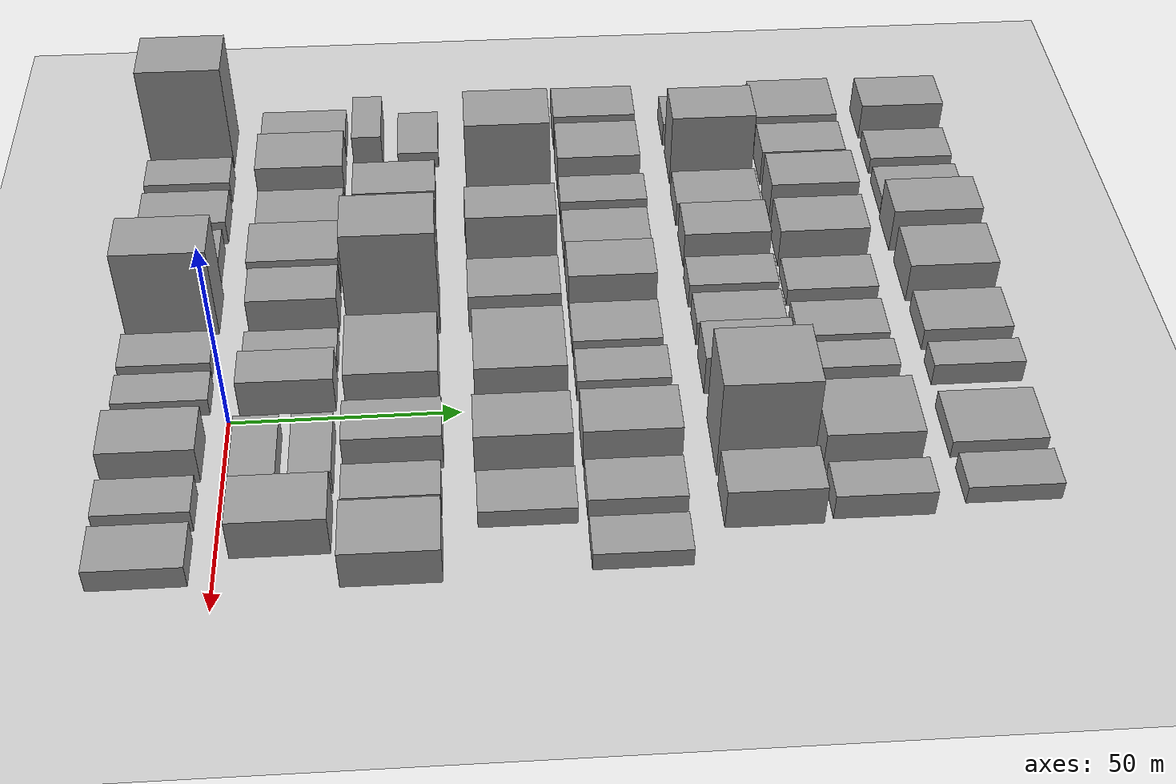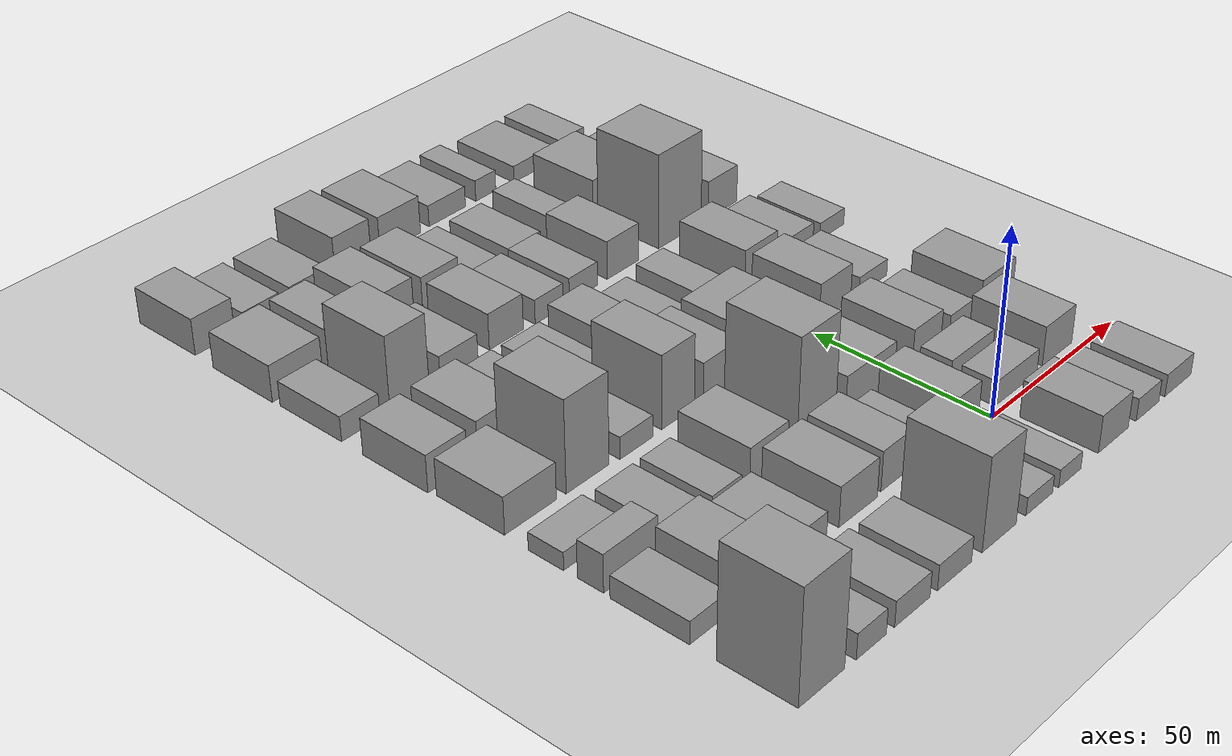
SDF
<sdf version="1.4">
 <world name="default">
  <model name="ground_plane">
   <static>1</static>
   <pose>100 65 0 0 -0 0</pose>
   <link name="link">
    <velocity_decay><linear>0</linear><angular>0</angular></velocity_decay>
    <collision name="collision">
     <geometry><plane><normal>0 0 1</normal><size>400 250</size></plane></geometry>
     <surface><friction><ode><mu>100</mu><mu2>50</mu2></ode></friction></surface>
    </collision>
    <visual name="visual">
     <geometry><plane><normal>0 0 1</normal><size>400 250</size></plane></geometry>
     <material>
      <script><name>Gazebo/Grey</name><uri>file://media/materials/scripts/gazebo.material</uri></script>
     </material>
    </visual>
   </link>
  </model>
  <model name="box_100">
   <static>1</static>
   <pose>-94.3 -14.9 15 0 -0 0</pose>
   <link name="link">
    <velocity_decay><linear>0</linear><angular>0</angular></velocity_decay>
    <collision name="collision"><geometry><box><size>14.4 20.2 30</size></box></geometry></collision>
    <visual name="visual">
     <geometry><box><size>14.4 20.2 30</size></box></geometry>
     <material>
      <script><name>Gazebo/Grey</name><uri>file://media/materials/scripts/gazebo.material</uri></script>
     </material>
    </visual>
   </link>
  </model>
  <model name="box_200">
   <static>1</static>
   <pose>-78.44 -14.7 3 0 -0 0</pose>
   <link name="link">
    <velocity_decay><linear>0</linear><angular>0</angular></velocity_decay>
    <collision name="collision"><geometry><box><size>9.8 20.6 7</size></box></geometry></collision>
    <visual name="visual">
     <geometry><box><size>9.8 20.6 7</size></box></geometry>
     <material>
      <script><name>Gazebo/Grey</name><uri>file://media/materials/scripts/gazebo.material</uri></script>
     </material>
    </visual>
   </link>
  </model>
  <model name="box_300">
   <static>1</static>
   <pose>-64.82 -14.65 3 0 -0 0</pose>
   <link name="link">
    <velocity_decay><linear>0</linear><angular>0</angular></velocity_decay>
    <collision name="collision"><geometry><box><size>12 20.7 7</size></box></geometry></collision>
    <visual name="visual">
     <geometry><box><size>12 20.7 7</size></box></geometry>
     <material>
      <script><name>Gazebo/Grey</name><uri>file://media/materials/scripts/gazebo.material</uri></script>
     </material>
    </visual>
   </link>
  </model>
  <model name="box_400">
   <static>1</static>
   <pose>-50.24 -14.95 3 0 -0 0</pose>
   <link name="link">
    <velocity_decay><linear>0</linear><angular>0</angular></velocity_decay>
    <collision name="collision"><geometry><box><size>12 20.1 7</size></box></geometry></collision>
    <visual name="visual">
     <geometry><box><size>12 20.1 7</size></box></geometry>
     <material>
      <script><name>Gazebo/Grey</name><uri>file://media/materials/scripts/gazebo.material</uri></script>
     </material>
    </visual>
   </link>
  </model>
  <model name="box_500">
   <static>1</static>
   <pose>-34.15 -14.55 12 0 -0 0</pose>
   <link name="link">
    <velocity_decay><linear>0</linear><angular>0</angular></velocity_decay>
    <collision name="collision"><geometry><box><size>12.5 20.9 25</size></box></geometry></collision>
    <visual name="visual">
     <geometry><box><size>12.5 20.9 25</size></box></geometry>
     <material>
      <script><name>Gazebo/Grey</name><uri>file://media/materials/scripts/gazebo.material</uri></script>
     </material>
    </visual>
   </link>
  </model>
  <model name="box_600">
   <static>1</static>
   <pose>-19.13 -14.8 2 0 -0 0</pose>
   <link name="link">
    <velocity_decay><linear>0</linear><angular>0</angular></velocity_decay>
    <collision name="collision"><geometry><box><size>10.2 20.4 5</size></box></geometry></collision>
    <visual name="visual">
     <geometry><box><size>10.2 20.4 5</size></box></geometry>
     <material>
      <script><name>Gazebo/Grey</name><uri>file://media/materials/scripts/gazebo.material</uri></script>
     </material>
    </visual>
   </link>
  </model>
  <model name="box_700">
   <static>1</static>
   <pose>-7.265 -14.6 2 0 -0 0</pose>
   <link name="link">
    <velocity_decay><linear>0</linear><angular>0</angular></velocity_decay>
    <collision name="collision"><geometry><box><size>8.73 20.8 5</size></box></geometry></collision>
    <visual name="visual">
     <geometry><box><size>8.73 20.8 5</size></box></geometry>
     <material>
      <script><name>Gazebo/Grey</name><uri>file://media/materials/scripts/gazebo.material</uri></script>
     </material>
    </visual>
   </link>
  </model>
  <model name="box_110">
   <static>1</static>
   <pose>-95.6 12.5 3 0 -0 0</pose>
   <link name="link">
    <velocity_decay><linear>0</linear><angular>0</angular></velocity_decay>
    <collision name="collision"><geometry><box><size>11.8 21 6</size></box></geometry></collision>
    <visual name="visual">
     <geometry><box><size>11.8 21 6</size></box></geometry>
     <material>
      <script><name>Gazebo/Grey</name><uri>file://media/materials/scripts/gazebo.material</uri></script>
     </material>
    </visual>
   </link>
  </model>
  <model name="box_210">
   <static>1</static>
   <pose>-80.82 12.5 5 0 -0 0</pose>
   <link name="link">
    <velocity_decay><linear>0</linear><angular>0</angular></velocity_decay>
    <collision name="collision"><geometry><box><size>13.7 21 10</size></box></geometry></collision>
    <visual name="visual">
     <geometry><box><size>13.7 21 10</size></box></geometry>
     <material>
      <script><name>Gazebo/Grey</name><uri>file://media/materials/scripts/gazebo.material</uri></script>
     </material>
    </visual>
   </link>
  </model>
  <model name="box_310">
   <static>1</static>
   <pose>-63.67 12.8 3 0 -0 0</pose>
   <link name="link">
    <velocity_decay><linear>0</linear><angular>0</angular></velocity_decay>
    <collision name="collision"><geometry><box><size>13.6 20.4 6</size></box></geometry></collision>
    <visual name="visual">
     <geometry><box><size>13.6 20.4 6</size></box></geometry>
     <material>
      <script><name>Gazebo/Grey</name><uri>file://media/materials/scripts/gazebo.material</uri></script>
     </material>
    </visual>
   </link>
  </model>
  <model name="box_410">
   <static>1</static>
   <pose>-46.56 12.6 5 0 -0 0</pose>
   <link name="link">
    <velocity_decay><linear>0</linear><angular>0</angular></velocity_decay>
    <collision name="collision"><geometry><box><size>13.4 20.8 11</size></box></geometry></collision>
    <visual name="visual">
     <geometry><box><size>13.4 20.8 11</size></box></geometry>
     <material>
      <script><name>Gazebo/Grey</name><uri>file://media/materials/scripts/gazebo.material</uri></script>
     </material>
    </visual>
   </link>
  </model>
  <model name="box_510">
   <static>1</static>
   <pose>-32.19 12.9 5 0 -0 0</pose>
   <link name="link">
    <velocity_decay><linear>0</linear><angular>0</angular></velocity_decay>
    <collision name="collision"><geometry><box><size>11.1 20.2 11</size></box></geometry></collision>
    <visual name="visual">
     <geometry><box><size>11.1 20.2 11</size></box></geometry>
     <material>
      <script><name>Gazebo/Grey</name><uri>file://media/materials/scripts/gazebo.material</uri></script>
     </material>
    </visual>
   </link>
  </model>
  <model name="box_610">
   <static>1</static>
   <pose>-18.9 12.6 2 0 -0 0</pose>
   <link name="link">
    <velocity_decay><linear>0</linear><angular>0</angular></velocity_decay>
    <collision name="collision"><geometry><box><size>9.1 20.8 5</size></box></geometry></collision>
    <visual name="visual">
     <geometry><box><size>9.1 20.8 5</size></box></geometry>
     <material>
      <script><name>Gazebo/Grey</name><uri>file://media/materials/scripts/gazebo.material</uri></script>
     </material>
    </visual>
   </link>
  </model>
  <model name="box_710">
   <static>1</static>
   <pose>-6.88 12.6 5 0 -0 0</pose>
   <link name="link">
    <velocity_decay><linear>0</linear><angular>0</angular></velocity_decay>
    <collision name="collision"><geometry><box><size>9.56 20.8 10</size></box></geometry></collision>
    <visual name="visual">
     <geometry><box><size>9.56 20.8 10</size></box></geometry>
     <material>
      <script><name>Gazebo/Grey</name><uri>file://media/materials/scripts/gazebo.material</uri></script>
     </material>
    </visual>
   </link>
  </model>
  <model name="box_120">
   <static>1</static>
   <pose>-92.95 28.6 5 0 -0 0</pose>
   <link name="link">
    <velocity_decay><linear>0</linear><angular>0</angular></velocity_decay>
    <collision name="collision"><geometry><box><size>16.5 7.2 10</size></box></geometry></collision>
    <visual name="visual">
     <geometry><box><size>16.5 7.2 10</size></box></geometry>
     <material>
      <script><name>Gazebo/Grey</name><uri>file://media/materials/scripts/gazebo.material</uri></script>
     </material>
    </visual>
   </link>
  </model>
  <model name="box_1202">
   <static>1</static>
   <pose>-92.95 41 2 0 -0 0</pose>
   <link name="link">
    <velocity_decay><linear>0</linear><angular>0</angular></velocity_decay>
    <collision name="collision"><geometry><box><size>16.5 10 5</size></box></geometry></collision>
    <visual name="visual">
     <geometry><box><size>16.5 10 5</size></box></geometry>
     <material>
      <script><name>Gazebo/Grey</name><uri>file://media/materials/scripts/gazebo.material</uri></script>
     </material>
    </visual>
   </link>
  </model>
  <model name="box_220">
   <static>1</static>
   <pose>-75.71 35.05 2 0 -0 0</pose>
   <link name="link">
    <velocity_decay><linear>0</linear><angular>0</angular></velocity_decay>
    <collision name="collision"><geometry><box><size>12 20.1 5</size></box></geometry></collision>
    <visual name="visual">
     <geometry><box><size>12 20.1 5</size></box></geometry>
     <material>
      <script><name>Gazebo/Grey</name><uri>file://media/materials/scripts/gazebo.material</uri></script>
     </material>
    </visual>
   </link>
  </model>
  <model name="box_320">
   <static>1</static>
   <pose>-62.4 35.05 2 0 -0 0</pose>
   <link name="link">
    <velocity_decay><linear>0</linear><angular>0</angular></velocity_decay>
    <collision name="collision"><geometry><box><size>9.8 20.1 5</size></box></geometry></collision>
    <visual name="visual">
     <geometry><box><size>9.8 20.1 5</size></box></geometry>
     <material>
      <script><name>Gazebo/Grey</name><uri>file://media/materials/scripts/gazebo.material</uri></script>
     </material>
    </visual>
   </link>
  </model>
  <model name="box_420">
   <static>1</static>
   <pose>-48.21 35.15 5 0 -0 0</pose>
   <link name="link">
    <velocity_decay><linear>0</linear><angular>0</angular></velocity_decay>
    <collision name="collision"><geometry><box><size>13.1 20.3 10</size></box></geometry></collision>
    <visual name="visual">
     <geometry><box><size>13.1 20.3 10</size></box></geometry>
     <material>
      <script><name>Gazebo/Grey</name><uri>file://media/materials/scripts/gazebo.material</uri></script>
     </material>
    </visual>
   </link>
  </model>
  <model name="box_520">
   <static>1</static>
   <pose>-31.63 35.35 15 0 -0 0</pose>
   <link name="link">
    <velocity_decay><linear>0</linear><angular>0</angular></velocity_decay>
    <collision name="collision"><geometry><box><size>13.7 20.7 30</size></box></geometry></collision>
    <visual name="visual">
     <geometry><box><size>13.7 20.7 30</size></box></geometry>
     <material>
      <script><name>Gazebo/Grey</name><uri>file://media/materials/scripts/gazebo.material</uri></script>
     </material>
    </visual>
   </link>
  </model>
  <model name="box_620">
   <static>1</static>
   <pose>-11.78 35.15 5 0 -0 0</pose>
   <link name="link">
    <velocity_decay><linear>0</linear><angular>0</angular></velocity_decay>
    <collision name="collision"><geometry><box><size>18.36 20.3 11</size></box></geometry></collision>
    <visual name="visual">
     <geometry><box><size>18.36 20.3 11</size></box></geometry>
     <material>
      <script><name>Gazebo/Grey</name><uri>file://media/materials/scripts/gazebo.material</uri></script>
     </material>
    </visual>
   </link>
  </model>
  <model name="box_130">
   <static>1</static>
   <pose>-93.35 62.9 5 0 -0 0</pose>
   <link name="link">
    <velocity_decay><linear>0</linear><angular>0</angular></velocity_decay>
    <collision name="collision"><geometry><box><size>15.7 20.2 10</size></box></geometry></collision>
    <visual name="visual">
     <geometry><box><size>15.7 20.2 10</size></box></geometry>
     <material>
      <script><name>Gazebo/Grey</name><uri>file://media/materials/scripts/gazebo.material</uri></script>
     </material>
    </visual>
   </link>
  </model>
  <model name="box_230">
   <static>1</static>
   <pose>-75.67 62.9 12 0 -0 0</pose>
   <link name="link">
    <velocity_decay><linear>0</linear><angular>0</angular></velocity_decay>
    <collision name="collision"><geometry><box><size>13.6 20.2 25</size></box></geometry></collision>
    <visual name="visual">
     <geometry><box><size>13.6 20.2 25</size></box></geometry>
     <material>
      <script><name>Gazebo/Grey</name><uri>file://media/materials/scripts/gazebo.material</uri></script>
     </material>
    </visual>
   </link>
  </model>
  <model name="box_330">
   <static>1</static>
   <pose>-60.77 62.5 3 0 -0 0</pose>
   <link name="link">
    <velocity_decay><linear>0</linear><angular>0</angular></velocity_decay>
    <collision name="collision"><geometry><box><size>10.8 21 6</size></box></geometry></collision>
    <visual name="visual">
     <geometry><box><size>10.8 21 6</size></box></geometry>
     <material>
      <script><name>Gazebo/Grey</name><uri>file://media/materials/scripts/gazebo.material</uri></script>
     </material>
    </visual>
   </link>
  </model>
  <model name="box_430">
   <static>1</static>
   <pose>-46.5 62.65 10 0 -0 0</pose>
   <link name="link">
    <velocity_decay><linear>0</linear><angular>0</angular></velocity_decay>
    <collision name="collision"><geometry><box><size>11.2 20.7 20</size></box></geometry></collision>
    <visual name="visual">
     <geometry><box><size>11.2 20.7 20</size></box></geometry>
     <material>
      <script><name>Gazebo/Grey</name><uri>file://media/materials/scripts/gazebo.material</uri></script>
     </material>
    </visual>
   </link>
  </model>
  <model name="box_530">
   <static>1</static>
   <pose>-31.51 62.6 5 0 -0 0</pose>
   <link name="link">
    <velocity_decay><linear>0</linear><angular>0</angular></velocity_decay>
    <collision name="collision"><geometry><box><size>12.8 20.8 11</size></box></geometry></collision>
    <visual name="visual">
     <geometry><box><size>12.8 20.8 11</size></box></geometry>
     <material>
      <script><name>Gazebo/Grey</name><uri>file://media/materials/scripts/gazebo.material</uri></script>
     </material>
    </visual>
   </link>
  </model>
  <model name="box_630">
   <static>1</static>
   <pose>-11.965 62.95 5 0 -0 0</pose>
   <link name="link">
    <velocity_decay><linear>0</linear><angular>0</angular></velocity_decay>
    <collision name="collision"><geometry><box><size>18.73 20.1 11</size></box></geometry></collision>
    <visual name="visual">
     <geometry><box><size>18.73 20.1 11</size></box></geometry>
     <material>
      <script><name>Gazebo/Grey</name><uri>file://media/materials/scripts/gazebo.material</uri></script>
     </material>
    </visual>
   </link>
  </model>
  <model name="box_140">
   <static>1</static>
   <pose>-95.85 85.15 5 0 -0 0</pose>
   <link name="link">
    <velocity_decay><linear>0</linear><angular>0</angular></velocity_decay>
    <collision name="collision"><geometry><box><size>11.9 20.3 10</size></box></geometry></collision>
    <visual name="visual">
     <geometry><box><size>11.9 20.3 10</size></box></geometry>
     <material>
      <script><name>Gazebo/Grey</name><uri>file://media/materials/scripts/gazebo.material</uri></script>
     </material>
    </visual>
   </link>
  </model>
  <model name="box_240">
   <static>1</static>
   <pose>-79.9 85.05 5 0 -0 0</pose>
   <link name="link">
    <velocity_decay><linear>0</linear><angular>0</angular></velocity_decay>
    <collision name="collision"><geometry><box><size>13.8 20.1 11</size></box></geometry></collision>
    <visual name="visual">
     <geometry><box><size>13.8 20.1 11</size></box></geometry>
     <material>
      <script><name>Gazebo/Grey</name><uri>file://media/materials/scripts/gazebo.material</uri></script>
     </material>
    </visual>
   </link>
  </model>
  <model name="box_340">
   <static>1</static>
   <pose>-66.06 85.4 3 0 -0 0</pose>
   <link name="link">
    <velocity_decay><linear>0</linear><angular>0</angular></velocity_decay>
    <collision name="collision"><geometry><box><size>9.7 20.8 7</size></box></geometry></collision>
    <visual name="visual">
     <geometry><box><size>9.7 20.8 7</size></box></geometry>
     <material>
      <script><name>Gazebo/Grey</name><uri>file://media/materials/scripts/gazebo.material</uri></script>
     </material>
    </visual>
   </link>
  </model>
  <model name="box_440">
   <static>1</static>
   <pose>-52.05 85.2 3 0 -0 0</pose>
   <link name="link">
    <velocity_decay><linear>0</linear><angular>0</angular></velocity_decay>
    <collision name="collision"><geometry><box><size>12.6 20.4 7</size></box></geometry></collision>
    <visual name="visual">
     <geometry><box><size>12.6 20.4 7</size></box></geometry>
     <material>
      <script><name>Gazebo/Grey</name><uri>file://media/materials/scripts/gazebo.material</uri></script>
     </material>
    </visual>
   </link>
  </model>
  <model name="box_540">
   <static>1</static>
   <pose>-37.03 85.1 5 0 -0 0</pose>
   <link name="link">
    <velocity_decay><linear>0</linear><angular>0</angular></velocity_decay>
    <collision name="collision"><geometry><box><size>11.9 20.2 10</size></box></geometry></collision>
    <visual name="visual">
     <geometry><box><size>11.9 20.2 10</size></box></geometry>
     <material>
      <script><name>Gazebo/Grey</name><uri>file://media/materials/scripts/gazebo.material</uri></script>
     </material>
    </visual>
   </link>
  </model>
  <model name="box_640">
   <static>1</static>
   <pose>-22.04 85.05 2 0 -0 0</pose>
   <link name="link">
    <velocity_decay><linear>0</linear><angular>0</angular></velocity_decay>
    <collision name="collision"><geometry><box><size>12.5 20.1 5</size></box></geometry></collision>
    <visual name="visual">
     <geometry><box><size>12.5 20.1 5</size></box></geometry>
     <material>
      <script><name>Gazebo/Grey</name><uri>file://media/materials/scripts/gazebo.material</uri></script>
     </material>
    </visual>
   </link>
  </model>
  <model name="box_740">
   <static>1</static>
   <pose>-6.99001 85.25 3 0 -0 0</pose>
   <link name="link">
    <velocity_decay><linear>0</linear><angular>0</angular></velocity_decay>
    <collision name="collision"><geometry><box><size>9.98001 20.5 6</size></box></geometry></collision>
    <visual name="visual">
     <geometry><box><size>9.98001 20.5 6</size></box></geometry>
     <material>
      <script><name>Gazebo/Grey</name><uri>file://media/materials/scripts/gazebo.material</uri></script>
     </material>
    </visual>
   </link>
  </model>
  <model name="box_150">
   <static>1</static>
   <pose>-95.65 112.8 3 0 -0 0</pose>
   <link name="link">
    <velocity_decay><linear>0</linear><angular>0</angular></velocity_decay>
    <collision name="collision"><geometry><box><size>11.5 20.4 7</size></box></geometry></collision>
    <visual name="visual">
     <geometry><box><size>11.5 20.4 7</size></box></geometry>
     <material>
      <script><name>Gazebo/Grey</name><uri>file://media/materials/scripts/gazebo.material</uri></script>
     </material>
    </visual>
   </link>
  </model>
  <model name="box_250">
   <static>1</static>
   <pose>-80.57 112.9 10 0 -0 0</pose>
   <link name="link">
    <velocity_decay><linear>0</linear><angular>0</angular></velocity_decay>
    <collision name="collision"><geometry><box><size>12.2 20.2 20</size></box></geometry></collision>
    <visual name="visual">
     <geometry><box><size>12.2 20.2 20</size></box></geometry>
     <material>
      <script><name>Gazebo/Grey</name><uri>file://media/materials/scripts/gazebo.material</uri></script>
     </material>
    </visual>
   </link>
  </model>
  <model name="box_350">
   <static>1</static>
   <pose>-65.01 112.85 3 0 -0 0</pose>
   <link name="link">
    <velocity_decay><linear>0</linear><angular>0</angular></velocity_decay>
    <collision name="collision"><geometry><box><size>12.2 20.3 7</size></box></geometry></collision>
    <visual name="visual">
     <geometry><box><size>12.2 20.3 7</size></box></geometry>
     <material>
      <script><name>Gazebo/Grey</name><uri>file://media/materials/scripts/gazebo.material</uri></script>
     </material>
    </visual>
   </link>
  </model>
  <model name="box_450">
   <static>1</static>
   <pose>-49.37 112.9 5 0 -0 0</pose>
   <link name="link">
    <velocity_decay><linear>0</linear><angular>0</angular></velocity_decay>
    <collision name="collision"><geometry><box><size>11.4 20.2 10</size></box></geometry></collision>
    <visual name="visual">
     <geometry><box><size>11.4 20.2 10</size></box></geometry>
     <material>
      <script><name>Gazebo/Grey</name><uri>file://media/materials/scripts/gazebo.material</uri></script>
     </material>
    </visual>
   </link>
  </model>
  <model name="box_550">
   <static>1</static>
   <pose>-35.08 112.75 3 0 -0 0</pose>
   <link name="link">
    <velocity_decay><linear>0</linear><angular>0</angular></velocity_decay>
    <collision name="collision"><geometry><box><size>9.8 20.5 7</size></box></geometry></collision>
    <visual name="visual">
     <geometry><box><size>9.8 20.5 7</size></box></geometry>
     <material>
      <script><name>Gazebo/Grey</name><uri>file://media/materials/scripts/gazebo.material</uri></script>
     </material>
    </visual>
   </link>
  </model>
  <model name="box_650">
   <static>1</static>
   <pose>-22.82 112.9 3 0 -0 0</pose>
   <link name="link">
    <velocity_decay><linear>0</linear><angular>0</angular></velocity_decay>
    <collision name="collision"><geometry><box><size>10 20.2 7</size></box></geometry></collision>
    <visual name="visual">
     <geometry><box><size>10 20.2 7</size></box></geometry>
     <material>
      <script><name>Gazebo/Grey</name><uri>file://media/materials/scripts/gazebo.material</uri></script>
     </material>
    </visual>
   </link>
  </model>
  <model name="box_750">
   <static>1</static>
   <pose>-8.495 112.9 5 0 -0 0</pose>
   <link name="link">
    <velocity_decay><linear>0</linear><angular>0</angular></velocity_decay>
    <collision name="collision"><geometry><box><size>11.59 20.2 11</size></box></geometry></collision>
    <visual name="visual">
     <geometry><box><size>11.59 20.2 11</size></box></geometry>
     <material>
      <script><name>Gazebo/Grey</name><uri>file://media/materials/scripts/gazebo.material</uri></script>
     </material>
    </visual>
   </link>
  </model>
  <model name="box_160">
   <static>1</static>
   <pose>-94.35 135.3 5 0 -0 0</pose>
   <link name="link">
    <velocity_decay><linear>0</linear><angular>0</angular></velocity_decay>
    <collision name="collision"><geometry><box><size>15.1 20.6 10</size></box></geometry></collision>
    <visual name="visual">
     <geometry><box><size>15.1 20.6 10</size></box></geometry>
     <material>
      <script><name>Gazebo/Grey</name><uri>file://media/materials/scripts/gazebo.material</uri></script>
     </material>
    </visual>
   </link>
  </model>
  <model name="box_260">
   <static>1</static>
   <pose>-78.43 135.2 5 0 -0 0</pose>
   <link name="link">
    <velocity_decay><linear>0</linear><angular>0</angular></velocity_decay>
    <collision name="collision"><geometry><box><size>11.3 20.4 10</size></box></geometry></collision>
    <visual name="visual">
     <geometry><box><size>11.3 20.4 10</size></box></geometry>
     <material>
      <script><name>Gazebo/Grey</name><uri>file://media/materials/scripts/gazebo.material</uri></script>
     </material>
    </visual>
   </link>
  </model>
  <model name="box_360">
   <static>1</static>
   <pose>-63.87 135.45 6 0 -0 0</pose>
   <link name="link">
    <velocity_decay><linear>0</linear><angular>0</angular></velocity_decay>
    <collision name="collision"><geometry><box><size>12 20.9 12</size></box></geometry></collision>
    <visual name="visual">
     <geometry><box><size>12 20.9 12</size></box></geometry>
     <material>
      <script><name>Gazebo/Grey</name><uri>file://media/materials/scripts/gazebo.material</uri></script>
     </material>
    </visual>
   </link>
  </model>
  <model name="box_460">
   <static>1</static>
   <pose>-48.93 135.45 5 0 -0 0</pose>
   <link name="link">
    <velocity_decay><linear>0</linear><angular>0</angular></velocity_decay>
    <collision name="collision"><geometry><box><size>12.1 20.9 11</size></box></geometry></collision>
    <visual name="visual">
     <geometry><box><size>12.1 20.9 11</size></box></geometry>
     <material>
      <script><name>Gazebo/Grey</name><uri>file://media/materials/scripts/gazebo.material</uri></script>
     </material>
    </visual>
   </link>
  </model>
  <model name="box_560">
   <static>1</static>
   <pose>-34.96 135.5 2 0 -0 0</pose>
   <link name="link">
    <velocity_decay><linear>0</linear><angular>0</angular></velocity_decay>
    <collision name="collision"><geometry><box><size>11 21 5</size></box></geometry></collision>
    <visual name="visual">
     <geometry><box><size>11 21 5</size></box></geometry>
     <material>
      <script><name>Gazebo/Grey</name><uri>file://media/materials/scripts/gazebo.material</uri></script>
     </material>
    </visual>
   </link>
  </model>
  <model name="box_660">
   <static>1</static>
   <pose>-19.97 135.35 2 0 -0 0</pose>
   <link name="link">
    <velocity_decay><linear>0</linear><angular>0</angular></velocity_decay>
    <collision name="collision"><geometry><box><size>11.2 20.7 5</size></box></geometry></collision>
    <visual name="visual">
     <geometry><box><size>11.2 20.7 5</size></box></geometry>
     <material>
      <script><name>Gazebo/Grey</name><uri>file://media/materials/scripts/gazebo.material</uri></script>
     </material>
    </visual>
   </link>
  </model>
  <model name="box_760">
   <static>1</static>
   <pose>-6.4 135.2 3 0 -0 0</pose>
   <link name="link">
    <velocity_decay><linear>0</linear><angular>0</angular></velocity_decay>
    <collision name="collision"><geometry><box><size>8.19999 20.4 7</size></box></geometry></collision>
    <visual name="visual">
     <geometry><box><size>8.19999 20.4 7</size></box></geometry>
     <material>
      <script><name>Gazebo/Grey</name><uri>file://media/materials/scripts/gazebo.material</uri></script>
     </material>
    </visual>
   </link>
  </model>
  <model name="box_170">
   <static>1</static>
   <pose>-95.5 162.8 5 0 -0 0</pose>
   <link name="link">
    <velocity_decay><linear>0</linear><angular>0</angular></velocity_decay>
    <collision name="collision"><geometry><box><size>11.8 20.4 10</size></box></geometry></collision>
    <visual name="visual">
     <geometry><box><size>11.8 20.4 10</size></box></geometry>
     <material>
      <script><name>Gazebo/Grey</name><uri>file://media/materials/scripts/gazebo.material</uri></script>
     </material>
    </visual>
   </link>
  </model>
  <model name="box_270">
   <static>1</static>
   <pose>-81.22 162.85 2 0 -0 0</pose>
   <link name="link">
    <velocity_decay><linear>0</linear><angular>0</angular></velocity_decay>
    <collision name="collision"><geometry><box><size>11.3 20.3 5</size></box></geometry></collision>
    <visual name="visual">
     <geometry><box><size>11.3 20.3 5</size></box></geometry>
     <material>
      <script><name>Gazebo/Grey</name><uri>file://media/materials/scripts/gazebo.material</uri></script>
     </material>
    </visual>
   </link>
  </model>
  <model name="box_370">
   <static>1</static>
   <pose>-66.34 162.8 2 0 -0 0</pose>
   <link name="link">
    <velocity_decay><linear>0</linear><angular>0</angular></velocity_decay>
    <collision name="collision"><geometry><box><size>12.1 20.4 5</size></box></geometry></collision>
    <visual name="visual">
     <geometry><box><size>12.1 20.4 5</size></box></geometry>
     <material>
      <script><name>Gazebo/Grey</name><uri>file://media/materials/scripts/gazebo.material</uri></script>
     </material>
    </visual>
   </link>
  </model>
  <model name="box_470">
   <static>1</static>
   <pose>-52.39 162.55 6 0 -0 0</pose>
   <link name="link">
    <velocity_decay><linear>0</linear><angular>0</angular></velocity_decay>
    <collision name="collision"><geometry><box><size>11.8 20.9 12</size></box></geometry></collision>
    <visual name="visual">
     <geometry><box><size>11.8 20.9 12</size></box></geometry>
     <material>
      <script><name>Gazebo/Grey</name><uri>file://media/materials/scripts/gazebo.material</uri></script>
     </material>
    </visual>
   </link>
  </model>
  <model name="box_570">
   <static>1</static>
   <pose>-36.19 162.8 5 0 -0 0</pose>
   <link name="link">
    <velocity_decay><linear>0</linear><angular>0</angular></velocity_decay>
    <collision name="collision"><geometry><box><size>13.8 20.4 11</size></box></geometry></collision>
    <visual name="visual">
     <geometry><box><size>13.8 20.4 11</size></box></geometry>
     <material>
      <script><name>Gazebo/Grey</name><uri>file://media/materials/scripts/gazebo.material</uri></script>
     </material>
    </visual>
   </link>
  </model>
  <model name="box_670">
   <static>1</static>
   <pose>-19.51 162.95 3 0 -0 0</pose>
   <link name="link">
    <velocity_decay><linear>0</linear><angular>0</angular></velocity_decay>
    <collision name="collision"><geometry><box><size>12.9 20.1 6</size></box></geometry></collision>
    <visual name="visual">
     <geometry><box><size>12.9 20.1 6</size></box></geometry>
     <material>
      <script><name>Gazebo/Grey</name><uri>file://media/materials/scripts/gazebo.material</uri></script>
     </material>
    </visual>
   </link>
  </model>
  <model name="box_770">
   <static>1</static>
   <pose>-5.75499 162.9 3 0 -0 0</pose>
   <link name="link">
    <velocity_decay><linear>0</linear><angular>0</angular></velocity_decay>
    <collision name="collision"><geometry><box><size>7.30998 20.2 6</size></box></geometry></collision>
    <visual name="visual">
     <geometry><box><size>7.30998 20.2 6</size></box></geometry>
     <material>
      <script><name>Gazebo/Grey</name><uri>file://media/materials/scripts/gazebo.material</uri></script>
     </material>
    </visual>
   </link>
  </model>
  <model name="box_101">
   <static>1</static>
   <pose>10.25 -14.8 5 0 -0 0</pose>
   <link name="link">
    <velocity_decay><linear>0</linear><angular>0</angular></velocity_decay>
    <collision name="collision"><geometry><box><size>12.3 20.4 10</size></box></geometry></collision>
    <visual name="visual">
     <geometry><box><size>12.3 20.4 10</size></box></geometry>
     <material>
      <script><name>Gazebo/Grey</name><uri>file://media/materials/scripts/gazebo.material</uri></script>
     </material>
    </visual>
   </link>
  </model>
  <model name="box_201">
   <static>1</static>
   <pose>24.62 -14.95 3 0 -0 0</pose>
   <link name="link">
    <velocity_decay><linear>0</linear><angular>0</angular></velocity_decay>
    <collision name="collision"><geometry><box><size>9.7 20.1 6</size></box></geometry></collision>
    <visual name="visual">
     <geometry><box><size>9.7 20.1 6</size></box></geometry>
     <material>
      <script><name>Gazebo/Grey</name><uri>file://media/materials/scripts/gazebo.material</uri></script>
     </material>
    </visual>
   </link>
  </model>
  <model name="box_301">
   <static>1</static>
   <pose>37.82 -14.95 3 0 -0 0</pose>
   <link name="link">
    <velocity_decay><linear>0</linear><angular>0</angular></velocity_decay>
    <collision name="collision"><geometry><box><size>11.5 20.1 6</size></box></geometry></collision>
    <visual name="visual">
     <geometry><box><size>11.5 20.1 6</size></box></geometry>
     <material>
      <script><name>Gazebo/Grey</name><uri>file://media/materials/scripts/gazebo.material</uri></script>
     </material>
    </visual>
   </link>
  </model>
  <model name="box_111">
   <static>1</static>
   <pose>12.65 6.8 3 0 -0 0</pose>
   <link name="link">
    <velocity_decay><linear>0</linear><angular>0</angular></velocity_decay>
    <collision name="collision"><geometry><box><size>16.9 9.6 7</size></box></geometry></collision>
    <visual name="visual">
     <geometry><box><size>16.9 9.6 7</size></box></geometry>
     <material>
      <script><name>Gazebo/Grey</name><uri>file://media/materials/scripts/gazebo.material</uri></script>
     </material>
    </visual>
   </link>
  </model>
  <model name="box_1112">
   <static>1</static>
   <pose>12.65 18.6 3 0 -0 0</pose>
   <link name="link">
    <velocity_decay><linear>0</linear><angular>0</angular></velocity_decay>
    <collision name="collision"><geometry><box><size>16.9 8.8 7</size></box></geometry></collision>
    <visual name="visual">
     <geometry><box><size>16.9 8.8 7</size></box></geometry>
     <material>
      <script><name>Gazebo/Grey</name><uri>file://media/materials/scripts/gazebo.material</uri></script>
     </material>
    </visual>
   </link>
  </model>
  <model name="box_211">
   <static>1</static>
   <pose>30.63 12.85 5 0 -0 0</pose>
   <link name="link">
    <velocity_decay><linear>0</linear><angular>0</angular></velocity_decay>
    <collision name="collision"><geometry><box><size>12.4 20.3 11</size></box></geometry></collision>
    <visual name="visual">
     <geometry><box><size>12.4 20.3 11</size></box></geometry>
     <material>
      <script><name>Gazebo/Grey</name><uri>file://media/materials/scripts/gazebo.material</uri></script>
     </material>
    </visual>
   </link>
  </model>
  <model name="box_121">
   <static>1</static>
   <pose>10 35.45 5 0 -0 0</pose>
   <link name="link">
    <velocity_decay><linear>0</linear><angular>0</angular></velocity_decay>
    <collision name="collision"><geometry><box><size>11.2 20.9 10</size></box></geometry></collision>
    <visual name="visual">
     <geometry><box><size>11.2 20.9 10</size></box></geometry>
     <material>
      <script><name>Gazebo/Grey</name><uri>file://media/materials/scripts/gazebo.material</uri></script>
     </material>
    </visual>
   </link>
  </model>
  <model name="box_221">
   <static>1</static>
   <pose>23.73 35.2 3 0 -0 0</pose>
   <link name="link">
    <velocity_decay><linear>0</linear><angular>0</angular></velocity_decay>
    <collision name="collision"><geometry><box><size>9.3 20.4 7</size></box></geometry></collision>
    <visual name="visual">
     <geometry><box><size>9.3 20.4 7</size></box></geometry>
     <material>
      <script><name>Gazebo/Grey</name><uri>file://media/materials/scripts/gazebo.material</uri></script>
     </material>
    </visual>
   </link>
  </model>
  <model name="box_321">
   <static>1</static>
   <pose>38.66 35.2 5 0 -0 0</pose>
   <link name="link">
    <velocity_decay><linear>0</linear><angular>0</angular></velocity_decay>
    <collision name="collision"><geometry><box><size>13.8 20.4 10</size></box></geometry></collision>
    <visual name="visual">
     <geometry><box><size>13.8 20.4 10</size></box></geometry>
     <material>
      <script><name>Gazebo/Grey</name><uri>file://media/materials/scripts/gazebo.material</uri></script>
     </material>
    </visual>
   </link>
  </model>
  <model name="box_131">
   <static>1</static>
   <pose>10.9 62.65 5 0 -0 0</pose>
   <link name="link">
    <velocity_decay><linear>0</linear><angular>0</angular></velocity_decay>
    <collision name="collision"><geometry><box><size>12.2 20.7 11</size></box></geometry></collision>
    <visual name="visual">
     <geometry><box><size>12.2 20.7 11</size></box></geometry>
     <material>
      <script><name>Gazebo/Grey</name><uri>file://media/materials/scripts/gazebo.material</uri></script>
     </material>
    </visual>
   </link>
  </model>
  <model name="box_231">
   <static>1</static>
   <pose>26.34 62.8 2 0 -0 0</pose>
   <link name="link">
    <velocity_decay><linear>0</linear><angular>0</angular></velocity_decay>
    <collision name="collision"><geometry><box><size>11.2 20.4 5</size></box></geometry></collision>
    <visual name="visual">
     <geometry><box><size>11.2 20.4 5</size></box></geometry>
     <material>
      <script><name>Gazebo/Grey</name><uri>file://media/materials/scripts/gazebo.material</uri></script>
     </material>
    </visual>
   </link>
  </model>
  <model name="box_141">
   <static>1</static>
   <pose>10.75 85.45 5 0 -0 0</pose>
   <link name="link">
    <velocity_decay><linear>0</linear><angular>0</angular></velocity_decay>
    <collision name="collision"><geometry><box><size>12.3 20.9 11</size></box></geometry></collision>
    <visual name="visual">
     <geometry><box><size>12.3 20.9 11</size></box></geometry>
     <material>
      <script><name>Gazebo/Grey</name><uri>file://media/materials/scripts/gazebo.material</uri></script>
     </material>
    </visual>
   </link>
  </model>
  <model name="box_241">
   <static>1</static>
   <pose>25.92 85.25 3 0 -0 0</pose>
   <link name="link">
    <velocity_decay><linear>0</linear><angular>0</angular></velocity_decay>
    <collision name="collision"><geometry><box><size>11.1 20.5 6</size></box></geometry></collision>
    <visual name="visual">
     <geometry><box><size>11.1 20.5 6</size></box></geometry>
     <material>
      <script><name>Gazebo/Grey</name><uri>file://media/materials/scripts/gazebo.material</uri></script>
     </material>
    </visual>
   </link>
  </model>
  <model name="box_341">
   <static>1</static>
   <pose>39.24 85.15 2 0 -0 0</pose>
   <link name="link">
    <velocity_decay><linear>0</linear><angular>0</angular></velocity_decay>
    <collision name="collision"><geometry><box><size>9.8 20.3 5</size></box></geometry></collision>
    <visual name="visual">
     <geometry><box><size>9.8 20.3 5</size></box></geometry>
     <material>
      <script><name>Gazebo/Grey</name><uri>file://media/materials/scripts/gazebo.material</uri></script>
     </material>
    </visual>
   </link>
  </model>
  <model name="box_151">
   <static>1</static>
   <pose>12.7 112.8 13 0 -0 0</pose>
   <link name="link">
    <velocity_decay><linear>0</linear><angular>0</angular></velocity_decay>
    <collision name="collision"><geometry><box><size>16.4 20.4 27</size></box></geometry></collision>
    <visual name="visual">
     <geometry><box><size>16.4 20.4 27</size></box></geometry>
     <material>
      <script><name>Gazebo/Grey</name><uri>file://media/materials/scripts/gazebo.material</uri></script>
     </material>
    </visual>
   </link>
  </model>
  <model name="box_251">
   <static>1</static>
   <pose>29.35 112.8 5 0 -0 0</pose>
   <link name="link">
    <velocity_decay><linear>0</linear><angular>0</angular></velocity_decay>
    <collision name="collision"><geometry><box><size>11.4 20.4 11</size></box></geometry></collision>
    <visual name="visual">
     <geometry><box><size>11.4 20.4 11</size></box></geometry>
     <material>
      <script><name>Gazebo/Grey</name><uri>file://media/materials/scripts/gazebo.material</uri></script>
     </material>
    </visual>
   </link>
  </model>
  <model name="box_161">
   <static>1</static>
   <pose>12.95 135.35 5 0 -0 0</pose>
   <link name="link">
    <velocity_decay><linear>0</linear><angular>0</angular></velocity_decay>
    <collision name="collision"><geometry><box><size>16.1 20.7 11</size></box></geometry></collision>
    <visual name="visual">
     <geometry><box><size>16.1 20.7 11</size></box></geometry>
     <material>
      <script><name>Gazebo/Grey</name><uri>file://media/materials/scripts/gazebo.material</uri></script>
     </material>
    </visual>
   </link>
  </model>
  <model name="box_261">
   <static>1</static>
   <pose>29.32 135.5 3 0 -0 0</pose>
   <link name="link">
    <velocity_decay><linear>0</linear><angular>0</angular></velocity_decay>
    <collision name="collision"><geometry><box><size>9.5 21 7</size></box></geometry></collision>
    <visual name="visual">
     <geometry><box><size>9.5 21 7</size></box></geometry>
     <material>
      <script><name>Gazebo/Grey</name><uri>file://media/materials/scripts/gazebo.material</uri></script>
     </material>
    </visual>
   </link>
  </model>
  <model name="box_171">
   <static>1</static>
   <pose>11.6 162.7 2 0 -0 0</pose>
   <link name="link">
    <velocity_decay><linear>0</linear><angular>0</angular></velocity_decay>
    <collision name="collision"><geometry><box><size>14.8 20.6 5</size></box></geometry></collision>
    <visual name="visual">
     <geometry><box><size>14.8 20.6 5</size></box></geometry>
     <material>
      <script><name>Gazebo/Grey</name><uri>file://media/materials/scripts/gazebo.material</uri></script>
     </material>
    </visual>
   </link>
  </model>
  <model name="box_271">
   <static>1</static>
   <pose>26.81 162.95 2 0 -0 0</pose>
   <link name="link">
    <velocity_decay><linear>0</linear><angular>0</angular></velocity_decay>
    <collision name="collision"><geometry><box><size>9.6 20.1 5</size></box></geometry></collision>
    <visual name="visual">
     <geometry><box><size>9.6 20.1 5</size></box></geometry>
     <material>
      <script><name>Gazebo/Grey</name><uri>file://media/materials/scripts/gazebo.material</uri></script>
     </material>
    </visual>
   </link>
  </model>
 </world>
</sdf>
